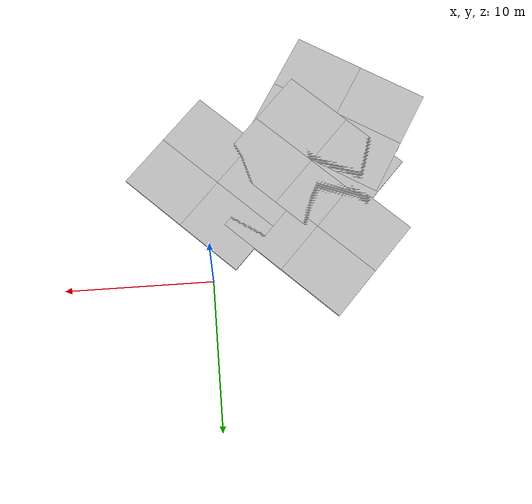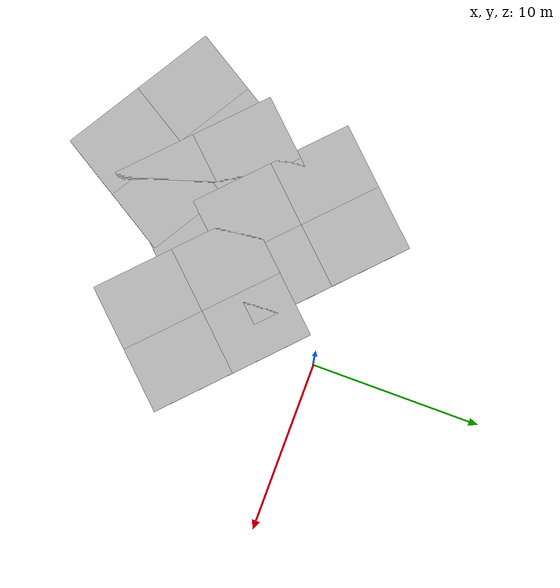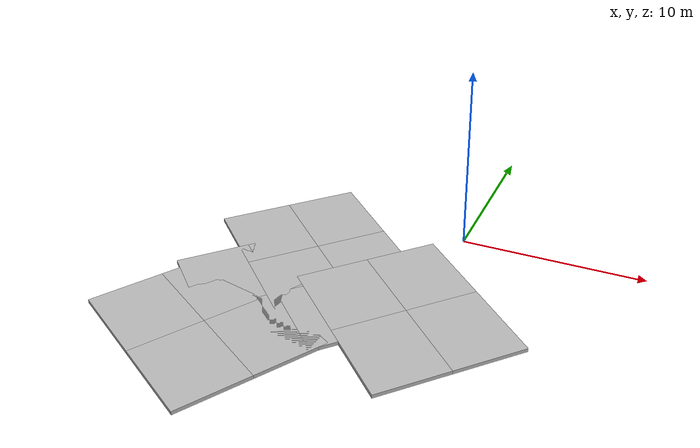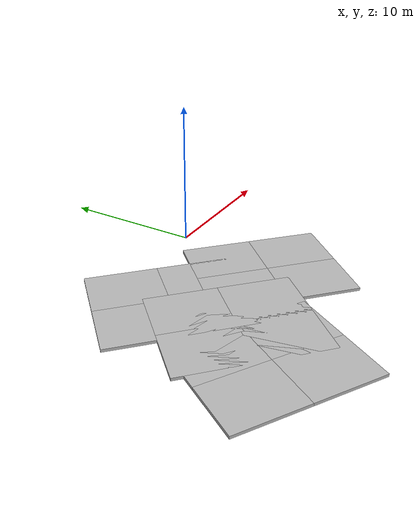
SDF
<sdf version="1.6">
 <world name="default">
  <scene>
   <sky><clouds><speed>12</speed></clouds></sky>
   <ambient>1 1 1 1</ambient>
   <shadows>1</shadows>
   <background>0.7 0.7 0.7 1</background>
  </scene>
  <light name="sun" type="directional">
   <pose>0 0 10 0 -0 0</pose>
   <diffuse>0.8 0.8 0.8 1</diffuse>
   <specular>0.2 0.2 0.2 1</specular>
   <attenuation>
    <range>1000</range>
    <constant>0.9</constant>
    <linear>0.01</linear>
    <quadratic>0.001</quadratic>
   </attenuation>
   <direction>-0.5 0.1 -0.9</direction>
  </light>
  <gravity>0 0 -9.8</gravity>
  <magnetic_field>6e-06 2.3e-05 -4.2e-05</magnetic_field>
  <atmosphere type="adiabatic"/>
  <physics name="default_physics" default="0" type="ode">
   <max_step_size>0.001</max_step_size>
   <real_time_factor>1</real_time_factor>
   <real_time_update_rate>1000</real_time_update_rate>
  </physics>
  <spherical_coordinates>
   <surface_model>EARTH_WGS84</surface_model>
   <latitude_deg>0</latitude_deg>
   <longitude_deg>0</longitude_deg>
   <elevation>0</elevation>
   <heading_deg>0</heading_deg>
  </spherical_coordinates>
  <model name="mud_box">
   <static>1</static>
   <link name="link">
    <collision name="collision">
     <geometry><box><size>8 10 0.2</size></box></geometry>
     <surface><friction><ode><mu>0.5</mu><mu2>0.5</mu2></ode></friction></surface>
    </collision>
    <visual name="visual_1">
     <pose>-2 2.5 0 0 -0 0</pose>
     <cast_shadows>0</cast_shadows>
     <geometry><box><size>4 5 0.2</size></box></geometry>
     <material>
      <script>
       <uri>model://mud_box/materials/scripts</uri>
       <uri>model://mud_box/materials/textures</uri>
       <name>vrc/mud</name>
      </script>
     </material>
    </visual>
    <visual name="visual_2">
     <pose>2 2.5 0 0 -0 0</pose>
     <cast_shadows>0</cast_shadows>
     <geometry><box><size>4 5 0.2</size></box></geometry>
     <material>
      <script>
       <uri>model://mud_box/materials/scripts</uri>
       <uri>model://mud_box/materials/textures</uri>
       <name>vrc/mud</name>
      </script>
     </material>
    </visual>
    <visual name="visual_3">
     <pose>2 -2.5 0 0 -0 0</pose>
     <cast_shadows>0</cast_shadows>
     <geometry><box><size>4 5 0.2</size></box></geometry>
     <material>
      <script>
       <uri>model://mud_box/materials/scripts</uri>
       <uri>model://mud_box/materials/textures</uri>
       <name>vrc/mud</name>
      </script>
     </material>
    </visual>
    <visual name="visual_4">
     <pose>-2 -2.5 0 0 -0 0</pose>
     <cast_shadows>0</cast_shadows>
     <geometry><box><size>4 5 0.2</size></box></geometry>
     <material>
      <script>
       <uri>model://mud_box/materials/scripts</uri>
       <uri>model://mud_box/materials/textures</uri>
       <name>vrc/mud</name>
      </script>
     </material>
    </visual>
   </link>
   <pose>-7.38952 -8.26353 -0.193629 0 -0 0.810832</pose>
  </model>
  <model name="mud_box_clone">
   <static>1</static>
   <link name="link">
    <collision name="collision">
     <geometry><box><size>8 10 0.2</size></box></geometry>
     <surface><friction><ode><mu>0.5</mu><mu2>0.5</mu2></ode></friction></surface>
    </collision>
    <visual name="visual_1">
     <pose>-2 2.5 0 0 -0 0</pose>
     <cast_shadows>0</cast_shadows>
     <geometry><box><size>4 5 0.2</size></box></geometry>
     <material>
      <script>
       <uri>model://mud_box/materials/scripts</uri>
       <uri>model://mud_box/materials/textures</uri>
       <name>vrc/mud</name>
      </script>
     </material>
    </visual>
    <visual name="visual_2">
     <pose>2 2.5 0 0 -0 0</pose>
     <cast_shadows>0</cast_shadows>
     <geometry><box><size>4 5 0.2</size></box></geometry>
     <material>
      <script>
       <uri>model://mud_box/materials/scripts</uri>
       <uri>model://mud_box/materials/textures</uri>
       <name>vrc/mud</name>
      </script>
     </material>
    </visual>
    <visual name="visual_3">
     <pose>2 -2.5 0 0 -0 0</pose>
     <cast_shadows>0</cast_shadows>
     <geometry><box><size>4 5 0.2</size></box></geometry>
     <material>
      <script>
       <uri>model://mud_box/materials/scripts</uri>
       <uri>model://mud_box/materials/textures</uri>
       <name>vrc/mud</name>
      </script>
     </material>
    </visual>
    <visual name="visual_4">
     <pose>-2 -2.5 0 0 -0 0</pose>
     <cast_shadows>0</cast_shadows>
     <geometry><box><size>4 5 0.2</size></box></geometry>
     <material>
      <script>
       <uri>model://mud_box/materials/scripts</uri>
       <uri>model://mud_box/materials/textures</uri>
       <name>vrc/mud</name>
      </script>
     </material>
    </visual>
   </link>
   <pose>-0.691406 -7.08827 -0.193629 0 -0 0.810832</pose>
  </model>
  <model name="mud_box_clone_0">
   <static>1</static>
   <link name="link">
    <collision name="collision">
     <geometry><box><size>8 10 0.2</size></box></geometry>
     <surface><friction><ode><mu>0.5</mu><mu2>0.5</mu2></ode></friction></surface>
    </collision>
    <visual name="visual_1">
     <pose>-2 2.5 0 0 -0 0</pose>
     <cast_shadows>0</cast_shadows>
     <geometry><box><size>4 5 0.2</size></box></geometry>
     <material>
      <script>
       <uri>model://mud_box/materials/scripts</uri>
       <uri>model://mud_box/materials/textures</uri>
       <name>vrc/mud</name>
      </script>
     </material>
    </visual>
    <visual name="visual_2">
     <pose>2 2.5 0 0 -0 0</pose>
     <cast_shadows>0</cast_shadows>
     <geometry><box><size>4 5 0.2</size></box></geometry>
     <material>
      <script>
       <uri>model://mud_box/materials/scripts</uri>
       <uri>model://mud_box/materials/textures</uri>
       <name>vrc/mud</name>
      </script>
     </material>
    </visual>
    <visual name="visual_3">
     <pose>2 -2.5 0 0 -0 0</pose>
     <cast_shadows>0</cast_shadows>
     <geometry><box><size>4 5 0.2</size></box></geometry>
     <material>
      <script>
       <uri>model://mud_box/materials/scripts</uri>
       <uri>model://mud_box/materials/textures</uri>
       <name>vrc/mud</name>
      </script>
     </material>
    </visual>
    <visual name="visual_4">
     <pose>-2 -2.5 0 0 -0 0</pose>
     <cast_shadows>0</cast_shadows>
     <geometry><box><size>4 5 0.2</size></box></geometry>
     <material>
      <script>
       <uri>model://mud_box/materials/scripts</uri>
       <uri>model://mud_box/materials/textures</uri>
       <name>vrc/mud</name>
      </script>
     </material>
    </visual>
   </link>
   <pose>-7.36904 -3.45612 -0.193629 0 -0 0.810832</pose>
  </model>
  <model name="mud_box_clone_1">
   <static>1</static>
   <link name="link">
    <collision name="collision">
     <geometry><box><size>8 10 0.2</size></box></geometry>
     <surface><friction><ode><mu>0.5</mu><mu2>0.5</mu2></ode></friction></surface>
    </collision>
    <visual name="visual_1">
     <pose>-2 2.5 0 0 -0 0</pose>
     <cast_shadows>0</cast_shadows>
     <geometry><box><size>4 5 0.2</size></box></geometry>
     <material>
      <script>
       <uri>model://mud_box/materials/scripts</uri>
       <uri>model://mud_box/materials/textures</uri>
       <name>vrc/mud</name>
      </script>
     </material>
    </visual>
    <visual name="visual_2">
     <pose>2 2.5 0 0 -0 0</pose>
     <cast_shadows>0</cast_shadows>
     <geometry><box><size>4 5 0.2</size></box></geometry>
     <material>
      <script>
       <uri>model://mud_box/materials/scripts</uri>
       <uri>model://mud_box/materials/textures</uri>
       <name>vrc/mud</name>
      </script>
     </material>
    </visual>
    <visual name="visual_3">
     <pose>2 -2.5 0 0 -0 0</pose>
     <cast_shadows>0</cast_shadows>
     <geometry><box><size>4 5 0.2</size></box></geometry>
     <material>
      <script>
       <uri>model://mud_box/materials/scripts</uri>
       <uri>model://mud_box/materials/textures</uri>
       <name>vrc/mud</name>
      </script>
     </material>
    </visual>
    <visual name="visual_4">
     <pose>-2 -2.5 0 0 -0 0</pose>
     <cast_shadows>0</cast_shadows>
     <geometry><box><size>4 5 0.2</size></box></geometry>
     <material>
      <script>
       <uri>model://mud_box/materials/scripts</uri>
       <uri>model://mud_box/materials/textures</uri>
       <name>vrc/mud</name>
      </script>
     </material>
    </visual>
   </link>
   <pose>-9.51315 -11.708 -0.193629 0 -0 1.02141</pose>
  </model>
 </world>
</sdf>
